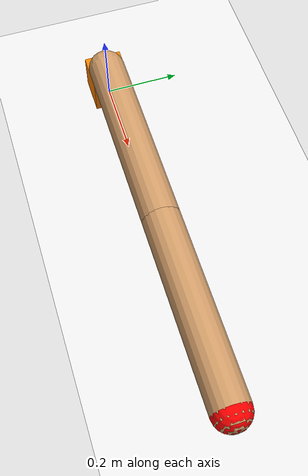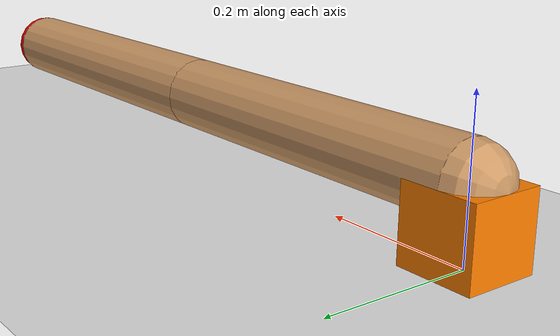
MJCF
<mujoco model="reacher">
    <compiler angle="radian"/>
    <option gravity="0 0 -9.81" timestep="0.01"/>

    <default>
        <joint damping="0.1"/>
        <geom friction="1.0 0.1 0.1" density="300" rgba="0.8 0.6 0.4 1"/>
    </default>

    <worldbody>
        <geom type="plane" pos="0 0 0" size="2 2 0.1" rgba="0.9 0.9 0.9 1"/>

        <body name="base" pos="0 0 0.1">
            <body name="link0" pos="0 0 0">
                <geom name="link0_geom" type="capsule" fromto="0 0 0 0.5 0 0" size="0.05"/>
                <joint name="joint0" type="hinge" axis="0 0 1" limited="false" damping="0.1"/>
                <body name="link1" pos="0.5 0 0">
                    <geom name="link1_geom" type="capsule" fromto="0 0 0 0.5 0 0" size="0.05"/>
                    <joint name="joint1" type="hinge" axis="0 0 1" limited="false" damping="0.1"/>
                    <body name="fingertip" pos="0.5 0 0">
                        <geom name="fingertip_geom" type="sphere" size="0.05" rgba="0.2 0.8 0.2 1"/>
                        <site name="fingertip_site" pos="0 0 0" size="0.01" rgba="0 0 1 1"/>
                    </body>
                </body>
            </body>
        </body>

        <body name="box_body" pos="0 0 0.05">
            <joint name="box_joint_free" type="free"/>
            <geom name="box_geom" type="box" size="0.05 0.05 0.05" rgba="1 0.5 0 1" mass="0.5"/>
            <site name="box_site" pos="0 0 0" size="0.01" rgba="1 0.5 0 1"/>
        </body>

        <site name="target" pos="1.0 0.0 0.1" size="0.05" rgba="1 0 0 1"/>
    </worldbody>

    <actuator>
        <motor joint="joint0" gear="3" ctrllimited="true" ctrlrange="-3 3"/>
        <motor joint="joint1" gear="3" ctrllimited="true" ctrlrange="-3 3"/>
    </actuator>
</mujoco>
